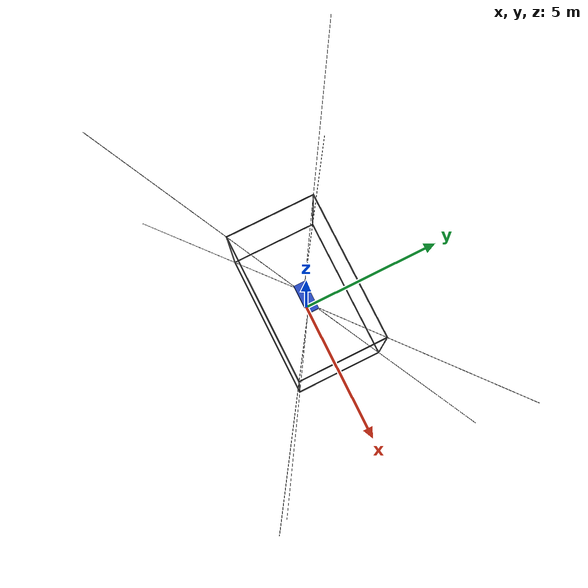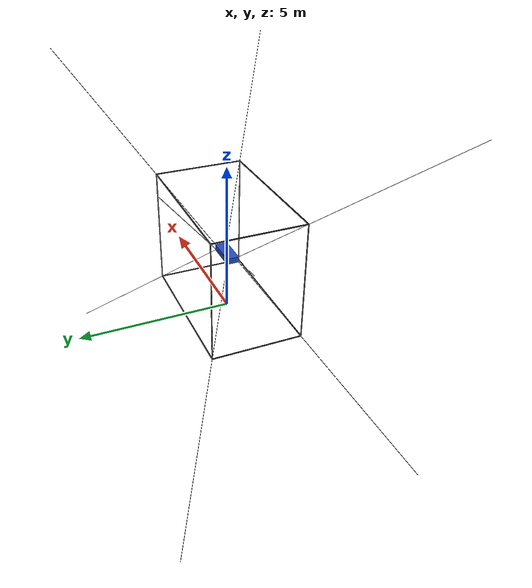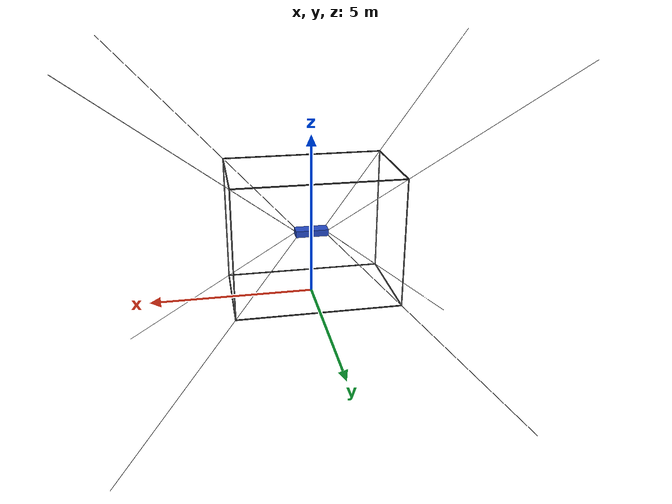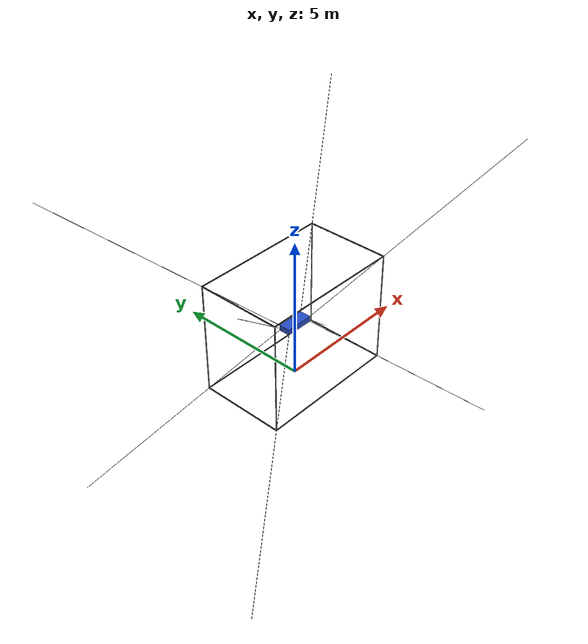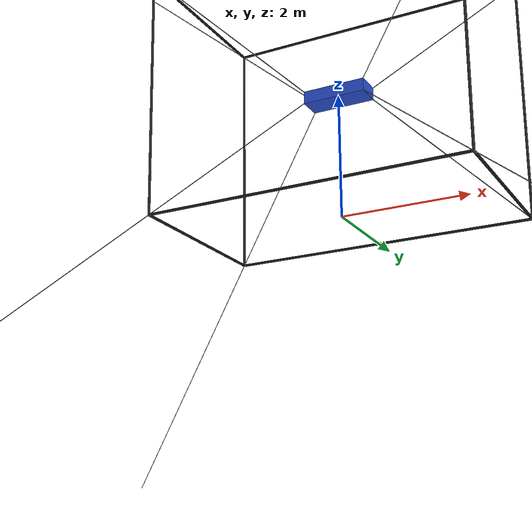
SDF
<?xml version="1.0"?>
<sdf version="1.4">
  <model name="cube">
    <!--Definition of the robot frame-->
    <link name="frame">
      <pose>0 0 0 0 0 0</pose>
      <inertial>
        <inertia>
          <ixx>50000.0</ixx>
          <ixy>0</ixy>
          <ixz>0</ixz>
          <iyy>50000.0</iyy>
          <iyz>0</iyz>
          <izz>50000.0</izz>
        </inertia>
        <mass>100000</mass>
      </inertial>
      <visual name="visual1">
        <geometry>
          <cylinder>
            <radius>0.02</radius>
            <length>4.0</length>
          </cylinder>
        </geometry>
        <pose>-2.500000 -1.500000 2.000000 0.000000 0.000000 0.000000</pose>
        <material>
          <script>
            <uri>file://media/materials/scripts/kitchen.material</uri>
            <name>Gazebo/Black</name>
          </script>
        </material>
      </visual>
      <collision name="collision1">
        <geometry>
          <cylinder>
            <radius>0.02</radius>
          </cylinder>
        </geometry>
        <pose>-2.500000 -1.500000 2.000000 0.000000 0.000000 0.000000</pose>
      </collision>
      <visual name="visual2">
        <geometry>
          <cylinder>
            <radius>0.02</radius>
            <length>3.0</length>
          </cylinder>
        </geometry>
        <pose>-2.500000 0.000000 0.000000 1.570796 0.000000 0.000000</pose>
        <material>
          <script>
            <uri>file://media/materials/scripts/kitchen.material</uri>
            <name>Gazebo/Black</name>
          </script>
        </material>
      </visual>
      <collision name="collision2">
        <geometry>
          <cylinder>
            <radius>0.02</radius>
          </cylinder>
        </geometry>
        <pose>-2.500000 0.000000 0.000000 1.570796 0.000000 0.000000</pose>
      </collision>
      <visual name="visual3">
        <geometry>
          <cylinder>
            <radius>0.02</radius>
            <length>5.0</length>
          </cylinder>
        </geometry>
        <pose>0.000000 -1.500000 0.000000 0.000000 1.570796 0.000000</pose>
        <material>
          <script>
            <uri>file://media/materials/scripts/kitchen.material</uri>
            <name>Gazebo/Black</name>
          </script>
        </material>
      </visual>
      <collision name="collision3">
        <geometry>
          <cylinder>
            <radius>0.02</radius>
          </cylinder>
        </geometry>
        <pose>0.000000 -1.500000 0.000000 0.000000 1.570796 0.000000</pose>
      </collision>
      <visual name="visual4">
        <geometry>
          <cylinder>
            <radius>0.02</radius>
            <length>3.0</length>
          </cylinder>
        </geometry>
        <pose>-2.500000 0.000000 4.000000 1.570796 0.000000 0.000000</pose>
        <material>
          <script>
            <uri>file://media/materials/scripts/kitchen.material</uri>
            <name>Gazebo/Black</name>
          </script>
        </material>
      </visual>
      <collision name="collision4">
        <geometry>
          <cylinder>
            <radius>0.02</radius>
          </cylinder>
        </geometry>
        <pose>-2.500000 0.000000 4.000000 1.570796 0.000000 0.000000</pose>
      </collision>
      <visual name="visual5">
        <geometry>
          <cylinder>
            <radius>0.02</radius>
            <length>5.0</length>
          </cylinder>
        </geometry>
        <pose>0.000000 -1.500000 4.000000 0.000000 1.570796 0.000000</pose>
        <material>
          <script>
            <uri>file://media/materials/scripts/kitchen.material</uri>
            <name>Gazebo/Black</name>
          </script>
        </material>
      </visual>
      <collision name="collision5">
        <geometry>
          <cylinder>
            <radius>0.02</radius>
          </cylinder>
        </geometry>
        <pose>0.000000 -1.500000 4.000000 0.000000 1.570796 0.000000</pose>
      </collision>
      <visual name="visual6">
        <geometry>
          <cylinder>
            <radius>0.02</radius>
            <length>4.0</length>
          </cylinder>
        </geometry>
        <pose>-2.500000 1.500000 2.000000 0.000000 0.000000 0.000000</pose>
        <material>
          <script>
            <uri>file://media/materials/scripts/kitchen.material</uri>
            <name>Gazebo/Black</name>
          </script>
        </material>
      </visual>
      <collision name="collision6">
        <geometry>
          <cylinder>
            <radius>0.02</radius>
          </cylinder>
        </geometry>
        <pose>-2.500000 1.500000 2.000000 0.000000 0.000000 0.000000</pose>
      </collision>
      <visual name="visual7">
        <geometry>
          <cylinder>
            <radius>0.02</radius>
            <length>5.0</length>
          </cylinder>
        </geometry>
        <pose>0.000000 1.500000 0.000000 0.000000 1.570796 0.000000</pose>
        <material>
          <script>
            <uri>file://media/materials/scripts/kitchen.material</uri>
            <name>Gazebo/Black</name>
          </script>
        </material>
      </visual>
      <collision name="collision7">
        <geometry>
          <cylinder>
            <radius>0.02</radius>
          </cylinder>
        </geometry>
        <pose>0.000000 1.500000 0.000000 0.000000 1.570796 0.000000</pose>
      </collision>
      <visual name="visual8">
        <geometry>
          <cylinder>
            <radius>0.02</radius>
            <length>5.0</length>
          </cylinder>
        </geometry>
        <pose>0.000000 1.500000 4.000000 0.000000 1.570796 0.000000</pose>
        <material>
          <script>
            <uri>file://media/materials/scripts/kitchen.material</uri>
            <name>Gazebo/Black</name>
          </script>
        </material>
      </visual>
      <collision name="collision8">
        <geometry>
          <cylinder>
            <radius>0.02</radius>
          </cylinder>
        </geometry>
        <pose>0.000000 1.500000 4.000000 0.000000 1.570796 0.000000</pose>
      </collision>
      <visual name="visual9">
        <geometry>
          <cylinder>
            <radius>0.02</radius>
            <length>4.0</length>
          </cylinder>
        </geometry>
        <pose>2.500000 -1.500000 2.000000 0.000000 0.000000 0.000000</pose>
        <material>
          <script>
            <uri>file://media/materials/scripts/kitchen.material</uri>
            <name>Gazebo/Black</name>
          </script>
        </material>
      </visual>
      <collision name="collision9">
        <geometry>
          <cylinder>
            <radius>0.02</radius>
          </cylinder>
        </geometry>
        <pose>2.500000 -1.500000 2.000000 0.000000 0.000000 0.000000</pose>
      </collision>
      <visual name="visual10">
        <geometry>
          <cylinder>
            <radius>0.02</radius>
            <length>3.0</length>
          </cylinder>
        </geometry>
        <pose>2.500000 0.000000 0.000000 1.570796 0.000000 0.000000</pose>
        <material>
          <script>
            <uri>file://media/materials/scripts/kitchen.material</uri>
            <name>Gazebo/Black</name>
          </script>
        </material>
      </visual>
      <collision name="collision10">
        <geometry>
          <cylinder>
            <radius>0.02</radius>
          </cylinder>
        </geometry>
        <pose>2.500000 0.000000 0.000000 1.570796 0.000000 0.000000</pose>
      </collision>
      <visual name="visual11">
        <geometry>
          <cylinder>
            <radius>0.02</radius>
            <length>3.0</length>
          </cylinder>
        </geometry>
        <pose>2.500000 0.000000 4.000000 1.570796 0.000000 0.000000</pose>
        <material>
          <script>
            <uri>file://media/materials/scripts/kitchen.material</uri>
            <name>Gazebo/Black</name>
          </script>
        </material>
      </visual>
      <collision name="collision11">
        <geometry>
          <cylinder>
            <radius>0.02</radius>
          </cylinder>
        </geometry>
        <pose>2.500000 0.000000 4.000000 1.570796 0.000000 0.000000</pose>
      </collision>
      <visual name="visual12">
        <geometry>
          <cylinder>
            <radius>0.02</radius>
            <length>4.0</length>
          </cylinder>
        </geometry>
        <pose>2.500000 1.500000 2.000000 0.000000 0.000000 0.000000</pose>
        <material>
          <script>
            <uri>file://media/materials/scripts/kitchen.material</uri>
            <name>Gazebo/Black</name>
          </script>
        </material>
      </visual>
      <collision name="collision12">
        <geometry>
          <cylinder>
            <radius>0.02</radius>
          </cylinder>
        </geometry>
        <pose>2.500000 1.500000 2.000000 0.000000 0.000000 0.000000</pose>
      </collision>
    </link>
    <!--Definition of the robot cables-->
    <!--Definition of the robot platform-->
    <link name="platform">
      <pose>0.000000 0.000000 2.000000 0.000000 0.000000 0.000000</pose>
      <visual name="visualplatform">
        <geometry>
          <box>
            <size>1 0.4 0.2</size>
          </box>
        </geometry>
        <material>
          <script>
            <uri>file://media/materials/scripts/kitchen.material</uri>
            <name>Gazebo/Blue</name>
          </script>
        </material>
      </visual>
      <collision name="collisionplatform">
        <geometry>
          <box>
            <size>1 0.4 0.2</size>
          </box>
        </geometry>
      </collision>
      <inertial>
        <inertia>
          <ixx>5.0</ixx>
          <ixy>0</ixy>
          <ixz>0</ixz>
          <iyy>5.0</iyy>
          <iyz>0</iyz>
          <izz>5.0</izz>
        </inertia>
        <mass>10</mass>
      </inertial>
    </link>
    <link name="cable0">
      <pose>-3.339809 -2.045876 -0.797819 -0.600050 0.715276 -0.230202</pose>
      <visual name="visual">
        <geometry>
          <cylinder>
            <radius>0.005</radius>
            <length>8.66025403784</length>
          </cylinder>
        </geometry>
        <material>
          <script>
            <uri>file://media/materials/scripts/kitchen.material</uri>
            <name>Gazebo/Black</name>
          </script>
        </material>
      </visual>
      <inertial>
        <inertia>
          <ixx>0.0</ixx>
          <ixy>0</ixy>
          <ixz>0</ixz>
          <iyy>0.0</iyy>
          <iyz>0</iyz>
          <izz>0.0</izz>
        </inertia>
        <mass>0.0</mass>
      </inertial>
    </link>
    <link name="virt_X0">
      <inertial>
        <inertia>
          <ixx>0.005</ixx>
          <ixy>0</ixy>
          <ixz>0</ixz>
          <iyy>0.005</iyy>
          <iyz>0</iyz>
          <izz>0.005</izz>
        </inertia>
        <mass>0.01</mass>
      </inertial>
      <pose>-2.500000 -1.500000 0.000000 -0.600050 0.715276 -0.230202</pose>
    </link>
    <joint name="rev_X0" type="revolute">
      <pose>0 0 0 -0.600050 0.715276 -0.230202</pose>
      <parent>frame</parent>
      <child>virt_X0</child>
      <axis>
        <xyz>0.734998 -0.172251 -0.655826</xyz>
        <limit>
          <effort>100</effort>
          <velocity>10</velocity>
        </limit>
        <dynamics>
          <damping>0.01</damping>
        </dynamics>
      </axis>
    </joint>
    <link name="virt_Y0">
      <inertial>
        <inertia>
          <ixx>0.005</ixx>
          <ixy>0</ixy>
          <ixz>0</ixz>
          <iyy>0.005</iyy>
          <iyz>0</iyz>
          <izz>0.005</izz>
        </inertia>
        <mass>0.01</mass>
      </inertial>
      <pose>-2.500000 -1.500000 0.000000 -0.600050 0.715276 -0.230202</pose>
    </link>
    <joint name="rev_Y0" type="revolute">
      <pose>0 0 0 -0.600050 0.715276 -0.230202</pose>
      <parent>virt_Y0</parent>
      <child>virt_X0</child>
      <axis>
        <xyz>-0.172251 0.888037 -0.426287</xyz>
        <limit>
          <effort>100</effort>
          <velocity>10</velocity>
        </limit>
        <dynamics>
          <damping>0.01</damping>
        </dynamics>
      </axis>
    </joint>
    <joint name="linear0" type="prismatic">
      <pose>0 0 1.818240 -0.600050 0.715276 -0.230202</pose>
      <parent>virt_Y0</parent>
      <child>cable0</child>
      <axis>
        <xyz>-0.655826 -0.426287 -0.623035</xyz>
        <limit>
          <lower>-50</lower>
          <upper>50</upper>
          <effort>400</effort>
          <velocity>100</velocity>
        </limit>
        <dynamics>
          <damping>1</damping>
        </dynamics>
      </axis>
    </joint>
    <link name="virt_Xpf0">
      <inertial>
        <inertia>
          <ixx>0.005</ixx>
          <ixy>0</ixy>
          <ixz>0</ixz>
          <iyy>0.005</iyy>
          <iyz>0</iyz>
          <izz>0.005</izz>
        </inertia>
        <mass>0.01</mass>
      </inertial>
      <pose>-0.500000 -0.200000 1.900000 -0.600050 0.715276 -0.230202</pose>
    </link>
    <joint name="rev_Xpf0" type="revolute">
      <pose>0 0 0 -0.600050 0.715276 -0.230202</pose>
      <parent>platform</parent>
      <child>virt_Ypf0</child>
      <axis>
        <xyz>1 0 0</xyz>
        <limit>
          <effort>100</effort>
          <velocity>10</velocity>
        </limit>
        <dynamics>
          <damping>0.01</damping>
        </dynamics>
      </axis>
    </joint>
    <link name="virt_Ypf0">
      <inertial>
        <inertia>
          <ixx>0.005</ixx>
          <ixy>0</ixy>
          <ixz>0</ixz>
          <iyy>0.005</iyy>
          <iyz>0</iyz>
          <izz>0.005</izz>
        </inertia>
        <mass>0.01</mass>
      </inertial>
      <pose>-0.500000 -0.200000 1.900000 -0.600050 0.715276 -0.230202</pose>
    </link>
    <joint name="rev_Ypf0" type="revolute">
      <pose>0 0 0 -0.600050 0.715276 -0.230202</pose>
      <parent>virt_Xpf0</parent>
      <child>virt_Ypf0</child>
      <axis>
        <xyz>0 1 0</xyz>
        <limit>
          <effort>100</effort>
          <velocity>10</velocity>
        </limit>
        <dynamics>
          <damping>0.01</damping>
        </dynamics>
      </axis>
    </joint>
    <joint name="rev_Zpf0" type="revolute">
      <pose>0 0 0 -0.600050 0.715276 -0.230202</pose>
      <child>virt_Ypf0</child>
      <parent>cable0</parent>
      <axis>
        <xyz>0 0 1</xyz>
        <limit>
          <effort>100</effort>
          <velocity>10</velocity>
        </limit>
        <dynamics>
          <damping>0.01</damping>
        </dynamics>
      </axis>
    </joint>
    <plugin filename="libcdpr3.so" name="freefloating_gazebo_control"/>
    <link name="cable1">
      <pose>-3.339809 2.045876 -0.797819 0.600050 0.715276 0.230202</pose>
      <visual name="visual">
        <geometry>
          <cylinder>
            <radius>0.005</radius>
            <length>8.66025403784</length>
          </cylinder>
        </geometry>
        <material>
          <script>
            <uri>file://media/materials/scripts/kitchen.material</uri>
            <name>Gazebo/Black</name>
          </script>
        </material>
      </visual>
      <inertial>
        <inertia>
          <ixx>0.0</ixx>
          <ixy>0</ixy>
          <ixz>0</ixz>
          <iyy>0.0</iyy>
          <iyz>0</iyz>
          <izz>0.0</izz>
        </inertia>
        <mass>0.0</mass>
      </inertial>
    </link>
    <link name="virt_X1">
      <inertial>
        <inertia>
          <ixx>0.005</ixx>
          <ixy>0</ixy>
          <ixz>0</ixz>
          <iyy>0.005</iyy>
          <iyz>0</iyz>
          <izz>0.005</izz>
        </inertia>
        <mass>0.01</mass>
      </inertial>
      <pose>-2.500000 1.500000 0.000000 0.600050 0.715276 0.230202</pose>
    </link>
    <joint name="rev_X1" type="revolute">
      <pose>0 0 0 0.600050 0.715276 0.230202</pose>
      <parent>frame</parent>
      <child>virt_X1</child>
      <axis>
        <xyz>0.734998 0.172251 -0.655826</xyz>
        <limit>
          <effort>100</effort>
          <velocity>10</velocity>
        </limit>
        <dynamics>
          <damping>0.01</damping>
        </dynamics>
      </axis>
    </joint>
    <link name="virt_Y1">
      <inertial>
        <inertia>
          <ixx>0.005</ixx>
          <ixy>0</ixy>
          <ixz>0</ixz>
          <iyy>0.005</iyy>
          <iyz>0</iyz>
          <izz>0.005</izz>
        </inertia>
        <mass>0.01</mass>
      </inertial>
      <pose>-2.500000 1.500000 0.000000 0.600050 0.715276 0.230202</pose>
    </link>
    <joint name="rev_Y1" type="revolute">
      <pose>0 0 0 0.600050 0.715276 0.230202</pose>
      <parent>virt_Y1</parent>
      <child>virt_X1</child>
      <axis>
        <xyz>0.172251 0.888037 0.426287</xyz>
        <limit>
          <effort>100</effort>
          <velocity>10</velocity>
        </limit>
        <dynamics>
          <damping>0.01</damping>
        </dynamics>
      </axis>
    </joint>
    <joint name="linear1" type="prismatic">
      <pose>0 0 1.818240 0.600050 0.715276 0.230202</pose>
      <parent>virt_Y1</parent>
      <child>cable1</child>
      <axis>
        <xyz>-0.655826 0.426287 -0.623035</xyz>
        <limit>
          <lower>-50</lower>
          <upper>50</upper>
          <effort>400</effort>
          <velocity>100</velocity>
        </limit>
        <dynamics>
          <damping>1</damping>
        </dynamics>
      </axis>
    </joint>
    <link name="virt_Xpf1">
      <inertial>
        <inertia>
          <ixx>0.005</ixx>
          <ixy>0</ixy>
          <ixz>0</ixz>
          <iyy>0.005</iyy>
          <iyz>0</iyz>
          <izz>0.005</izz>
        </inertia>
        <mass>0.01</mass>
      </inertial>
      <pose>-0.500000 0.200000 1.900000 0.600050 0.715276 0.230202</pose>
    </link>
    <joint name="rev_Xpf1" type="revolute">
      <pose>0 0 0 0.600050 0.715276 0.230202</pose>
      <parent>platform</parent>
      <child>virt_Ypf1</child>
      <axis>
        <xyz>1 0 0</xyz>
        <limit>
          <effort>100</effort>
          <velocity>10</velocity>
        </limit>
        <dynamics>
          <damping>0.01</damping>
        </dynamics>
      </axis>
    </joint>
    <link name="virt_Ypf1">
      <inertial>
        <inertia>
          <ixx>0.005</ixx>
          <ixy>0</ixy>
          <ixz>0</ixz>
          <iyy>0.005</iyy>
          <iyz>0</iyz>
          <izz>0.005</izz>
        </inertia>
        <mass>0.01</mass>
      </inertial>
      <pose>-0.500000 0.200000 1.900000 0.600050 0.715276 0.230202</pose>
    </link>
    <joint name="rev_Ypf1" type="revolute">
      <pose>0 0 0 0.600050 0.715276 0.230202</pose>
      <parent>virt_Xpf1</parent>
      <child>virt_Ypf1</child>
      <axis>
        <xyz>0 1 0</xyz>
        <limit>
          <effort>100</effort>
          <velocity>10</velocity>
        </limit>
        <dynamics>
          <damping>0.01</damping>
        </dynamics>
      </axis>
    </joint>
    <joint name="rev_Zpf1" type="revolute">
      <pose>0 0 0 0.600050 0.715276 0.230202</pose>
      <child>virt_Ypf1</child>
      <parent>cable1</parent>
      <axis>
        <xyz>0 0 1</xyz>
        <limit>
          <effort>100</effort>
          <velocity>10</velocity>
        </limit>
        <dynamics>
          <damping>0.01</damping>
        </dynamics>
      </axis>
    </joint>
    <plugin filename="libcdpr3.so" name="freefloating_gazebo_control"/>
    <link name="cable2">
      <pose>3.339809 2.045876 -0.797819 0.600050 -0.715276 -0.230202</pose>
      <visual name="visual">
        <geometry>
          <cylinder>
            <radius>0.005</radius>
            <length>8.66025403784</length>
          </cylinder>
        </geometry>
        <material>
          <script>
            <uri>file://media/materials/scripts/kitchen.material</uri>
            <name>Gazebo/Black</name>
          </script>
        </material>
      </visual>
      <inertial>
        <inertia>
          <ixx>0.0</ixx>
          <ixy>0</ixy>
          <ixz>0</ixz>
          <iyy>0.0</iyy>
          <iyz>0</iyz>
          <izz>0.0</izz>
        </inertia>
        <mass>0.0</mass>
      </inertial>
    </link>
    <link name="virt_X2">
      <inertial>
        <inertia>
          <ixx>0.005</ixx>
          <ixy>0</ixy>
          <ixz>0</ixz>
          <iyy>0.005</iyy>
          <iyz>0</iyz>
          <izz>0.005</izz>
        </inertia>
        <mass>0.01</mass>
      </inertial>
      <pose>2.500000 1.500000 0.000000 0.600050 -0.715276 -0.230202</pose>
    </link>
    <joint name="rev_X2" type="revolute">
      <pose>0 0 0 0.600050 -0.715276 -0.230202</pose>
      <parent>frame</parent>
      <child>virt_X2</child>
      <axis>
        <xyz>0.734998 -0.172251 0.655826</xyz>
        <limit>
          <effort>100</effort>
          <velocity>10</velocity>
        </limit>
        <dynamics>
          <damping>0.01</damping>
        </dynamics>
      </axis>
    </joint>
    <link name="virt_Y2">
      <inertial>
        <inertia>
          <ixx>0.005</ixx>
          <ixy>0</ixy>
          <ixz>0</ixz>
          <iyy>0.005</iyy>
          <iyz>0</iyz>
          <izz>0.005</izz>
        </inertia>
        <mass>0.01</mass>
      </inertial>
      <pose>2.500000 1.500000 0.000000 0.600050 -0.715276 -0.230202</pose>
    </link>
    <joint name="rev_Y2" type="revolute">
      <pose>0 0 0 0.600050 -0.715276 -0.230202</pose>
      <parent>virt_Y2</parent>
      <child>virt_X2</child>
      <axis>
        <xyz>-0.172251 0.888037 0.426287</xyz>
        <limit>
          <effort>100</effort>
          <velocity>10</velocity>
        </limit>
        <dynamics>
          <damping>0.01</damping>
        </dynamics>
      </axis>
    </joint>
    <joint name="linear2" type="prismatic">
      <pose>0 0 1.818240 0.600050 -0.715276 -0.230202</pose>
      <parent>virt_Y2</parent>
      <child>cable2</child>
      <axis>
        <xyz>0.655826 0.426287 -0.623035</xyz>
        <limit>
          <lower>-50</lower>
          <upper>50</upper>
          <effort>400</effort>
          <velocity>100</velocity>
        </limit>
        <dynamics>
          <damping>1</damping>
        </dynamics>
      </axis>
    </joint>
    <link name="virt_Xpf2">
      <inertial>
        <inertia>
          <ixx>0.005</ixx>
          <ixy>0</ixy>
          <ixz>0</ixz>
          <iyy>0.005</iyy>
          <iyz>0</iyz>
          <izz>0.005</izz>
        </inertia>
        <mass>0.01</mass>
      </inertial>
      <pose>0.500000 0.200000 1.900000 0.600050 -0.715276 -0.230202</pose>
    </link>
    <joint name="rev_Xpf2" type="revolute">
      <pose>0 0 0 0.600050 -0.715276 -0.230202</pose>
      <parent>platform</parent>
      <child>virt_Ypf2</child>
      <axis>
        <xyz>1 0 0</xyz>
        <limit>
          <effort>100</effort>
          <velocity>10</velocity>
        </limit>
        <dynamics>
          <damping>0.01</damping>
        </dynamics>
      </axis>
    </joint>
    <link name="virt_Ypf2">
      <inertial>
        <inertia>
          <ixx>0.005</ixx>
          <ixy>0</ixy>
          <ixz>0</ixz>
          <iyy>0.005</iyy>
          <iyz>0</iyz>
          <izz>0.005</izz>
        </inertia>
        <mass>0.01</mass>
      </inertial>
      <pose>0.500000 0.200000 1.900000 0.600050 -0.715276 -0.230202</pose>
    </link>
    <joint name="rev_Ypf2" type="revolute">
      <pose>0 0 0 0.600050 -0.715276 -0.230202</pose>
      <parent>virt_Xpf2</parent>
      <child>virt_Ypf2</child>
      <axis>
        <xyz>0 1 0</xyz>
        <limit>
          <effort>100</effort>
          <velocity>10</velocity>
        </limit>
        <dynamics>
          <damping>0.01</damping>
        </dynamics>
      </axis>
    </joint>
    <joint name="rev_Zpf2" type="revolute">
      <pose>0 0 0 0.600050 -0.715276 -0.230202</pose>
      <child>virt_Ypf2</child>
      <parent>cable2</parent>
      <axis>
        <xyz>0 0 1</xyz>
        <limit>
          <effort>100</effort>
          <velocity>10</velocity>
        </limit>
        <dynamics>
          <damping>0.01</damping>
        </dynamics>
      </axis>
    </joint>
    <plugin filename="libcdpr3.so" name="freefloating_gazebo_control"/>
    <link name="cable3">
      <pose>3.339809 -2.045876 -0.797819 -0.600050 -0.715276 0.230202</pose>
      <visual name="visual">
        <geometry>
          <cylinder>
            <radius>0.005</radius>
            <length>8.66025403784</length>
          </cylinder>
        </geometry>
        <material>
          <script>
            <uri>file://media/materials/scripts/kitchen.material</uri>
            <name>Gazebo/Black</name>
          </script>
        </material>
      </visual>
      <inertial>
        <inertia>
          <ixx>0.0</ixx>
          <ixy>0</ixy>
          <ixz>0</ixz>
          <iyy>0.0</iyy>
          <iyz>0</iyz>
          <izz>0.0</izz>
        </inertia>
        <mass>0.0</mass>
      </inertial>
    </link>
    <link name="virt_X3">
      <inertial>
        <inertia>
          <ixx>0.005</ixx>
          <ixy>0</ixy>
          <ixz>0</ixz>
          <iyy>0.005</iyy>
          <iyz>0</iyz>
          <izz>0.005</izz>
        </inertia>
        <mass>0.01</mass>
      </inertial>
      <pose>2.500000 -1.500000 0.000000 -0.600050 -0.715276 0.230202</pose>
    </link>
    <joint name="rev_X3" type="revolute">
      <pose>0 0 0 -0.600050 -0.715276 0.230202</pose>
      <parent>frame</parent>
      <child>virt_X3</child>
      <axis>
        <xyz>0.734998 0.172251 0.655826</xyz>
        <limit>
          <effort>100</effort>
          <velocity>10</velocity>
        </limit>
        <dynamics>
          <damping>0.01</damping>
        </dynamics>
      </axis>
    </joint>
    <link name="virt_Y3">
      <inertial>
        <inertia>
          <ixx>0.005</ixx>
          <ixy>0</ixy>
          <ixz>0</ixz>
          <iyy>0.005</iyy>
          <iyz>0</iyz>
          <izz>0.005</izz>
        </inertia>
        <mass>0.01</mass>
      </inertial>
      <pose>2.500000 -1.500000 0.000000 -0.600050 -0.715276 0.230202</pose>
    </link>
    <joint name="rev_Y3" type="revolute">
      <pose>0 0 0 -0.600050 -0.715276 0.230202</pose>
      <parent>virt_Y3</parent>
      <child>virt_X3</child>
      <axis>
        <xyz>0.172251 0.888037 -0.426287</xyz>
        <limit>
          <effort>100</effort>
          <velocity>10</velocity>
        </limit>
        <dynamics>
          <damping>0.01</damping>
        </dynamics>
      </axis>
    </joint>
    <joint name="linear3" type="prismatic">
      <pose>0 0 1.818240 -0.600050 -0.715276 0.230202</pose>
      <parent>virt_Y3</parent>
      <child>cable3</child>
      <axis>
        <xyz>0.655826 -0.426287 -0.623035</xyz>
        <limit>
          <lower>-50</lower>
          <upper>50</upper>
          <effort>400</effort>
          <velocity>100</velocity>
        </limit>
        <dynamics>
          <damping>1</damping>
        </dynamics>
      </axis>
    </joint>
    <link name="virt_Xpf3">
      <inertial>
        <inertia>
          <ixx>0.005</ixx>
          <ixy>0</ixy>
          <ixz>0</ixz>
          <iyy>0.005</iyy>
          <iyz>0</iyz>
          <izz>0.005</izz>
        </inertia>
        <mass>0.01</mass>
      </inertial>
      <pose>0.500000 -0.200000 1.900000 -0.600050 -0.715276 0.230202</pose>
    </link>
    <joint name="rev_Xpf3" type="revolute">
      <pose>0 0 0 -0.600050 -0.715276 0.230202</pose>
      <parent>platform</parent>
      <child>virt_Ypf3</child>
      <axis>
        <xyz>1 0 0</xyz>
        <limit>
          <effort>100</effort>
          <velocity>10</velocity>
        </limit>
        <dynamics>
          <damping>0.01</damping>
        </dynamics>
      </axis>
    </joint>
    <link name="virt_Ypf3">
      <inertial>
        <inertia>
          <ixx>0.005</ixx>
          <ixy>0</ixy>
          <ixz>0</ixz>
          <iyy>0.005</iyy>
          <iyz>0</iyz>
          <izz>0.005</izz>
        </inertia>
        <mass>0.01</mass>
      </inertial>
      <pose>0.500000 -0.200000 1.900000 -0.600050 -0.715276 0.230202</pose>
    </link>
    <joint name="rev_Ypf3" type="revolute">
      <pose>0 0 0 -0.600050 -0.715276 0.230202</pose>
      <parent>virt_Xpf3</parent>
      <child>virt_Ypf3</child>
      <axis>
        <xyz>0 1 0</xyz>
        <limit>
          <effort>100</effort>
          <velocity>10</velocity>
        </limit>
        <dynamics>
          <damping>0.01</damping>
        </dynamics>
      </axis>
    </joint>
    <joint name="rev_Zpf3" type="revolute">
      <pose>0 0 0 -0.600050 -0.715276 0.230202</pose>
      <child>virt_Ypf3</child>
      <parent>cable3</parent>
      <axis>
        <xyz>0 0 1</xyz>
        <limit>
          <effort>100</effort>
          <velocity>10</velocity>
        </limit>
        <dynamics>
          <damping>0.01</damping>
        </dynamics>
      </axis>
    </joint>
    <plugin filename="libcdpr3.so" name="freefloating_gazebo_control"/>
    <link name="cable4">
      <pose>-3.339809 -2.045876 4.797819 -2.541542 0.715276 -1.758640</pose>
      <visual name="visual">
        <geometry>
          <cylinder>
            <radius>0.005</radius>
            <length>8.66025403784</length>
          </cylinder>
        </geometry>
        <material>
          <script>
            <uri>file://media/materials/scripts/kitchen.material</uri>
            <name>Gazebo/Black</name>
          </script>
        </material>
      </visual>
      <inertial>
        <inertia>
          <ixx>0.0</ixx>
          <ixy>0</ixy>
          <ixz>0</ixz>
          <iyy>0.0</iyy>
          <iyz>0</iyz>
          <izz>0.0</izz>
        </inertia>
        <mass>0.0</mass>
      </inertial>
    </link>
    <link name="virt_X4">
      <inertial>
        <inertia>
          <ixx>0.005</ixx>
          <ixy>0</ixy>
          <ixz>0</ixz>
          <iyy>0.005</iyy>
          <iyz>0</iyz>
          <izz>0.005</izz>
        </inertia>
        <mass>0.01</mass>
      </inertial>
      <pose>-2.500000 -1.500000 4.000000 -2.541542 0.715276 -1.758640</pose>
    </link>
    <joint name="rev_X4" type="revolute">
      <pose>0 0 0 -2.541542 0.715276 -1.758640</pose>
      <parent>frame</parent>
      <child>virt_X4</child>
      <axis>
        <xyz>-0.140973 -0.741633 -0.655826</xyz>
        <limit>
          <effort>100</effort>
          <velocity>10</velocity>
        </limit>
        <dynamics>
          <damping>0.01</damping>
        </dynamics>
      </axis>
    </joint>
    <link name="virt_Y4">
      <inertial>
        <inertia>
          <ixx>0.005</ixx>
          <ixy>0</ixy>
          <ixz>0</ixz>
          <iyy>0.005</iyy>
          <iyz>0</iyz>
          <izz>0.005</izz>
        </inertia>
        <mass>0.01</mass>
      </inertial>
      <pose>-2.500000 -1.500000 4.000000 -2.541542 0.715276 -1.758640</pose>
    </link>
    <joint name="rev_Y4" type="revolute">
      <pose>0 0 0 -2.541542 0.715276 -1.758640</pose>
      <parent>virt_Y4</parent>
      <child>virt_X4</child>
      <axis>
        <xyz>-0.741633 0.517939 -0.426287</xyz>
        <limit>
          <effort>100</effort>
          <velocity>10</velocity>
        </limit>
        <dynamics>
          <damping>0.01</damping>
        </dynamics>
      </axis>
    </joint>
    <joint name="linear4" type="prismatic">
      <pose>0 0 1.818240 -2.541542 0.715276 -1.758640</pose>
      <parent>virt_Y4</parent>
      <child>cable4</child>
      <axis>
        <xyz>-0.655826 -0.426287 0.623035</xyz>
        <limit>
          <lower>-50</lower>
          <upper>50</upper>
          <effort>400</effort>
          <velocity>100</velocity>
        </limit>
        <dynamics>
          <damping>1</damping>
        </dynamics>
      </axis>
    </joint>
    <link name="virt_Xpf4">
      <inertial>
        <inertia>
          <ixx>0.005</ixx>
          <ixy>0</ixy>
          <ixz>0</ixz>
          <iyy>0.005</iyy>
          <iyz>0</iyz>
          <izz>0.005</izz>
        </inertia>
        <mass>0.01</mass>
      </inertial>
      <pose>-0.500000 -0.200000 2.100000 -2.541542 0.715276 -1.758640</pose>
    </link>
    <joint name="rev_Xpf4" type="revolute">
      <pose>0 0 0 -2.541542 0.715276 -1.758640</pose>
      <parent>platform</parent>
      <child>virt_Ypf4</child>
      <axis>
        <xyz>1 0 0</xyz>
        <limit>
          <effort>100</effort>
          <velocity>10</velocity>
        </limit>
        <dynamics>
          <damping>0.01</damping>
        </dynamics>
      </axis>
    </joint>
    <link name="virt_Ypf4">
      <inertial>
        <inertia>
          <ixx>0.005</ixx>
          <ixy>0</ixy>
          <ixz>0</ixz>
          <iyy>0.005</iyy>
          <iyz>0</iyz>
          <izz>0.005</izz>
        </inertia>
        <mass>0.01</mass>
      </inertial>
      <pose>-0.500000 -0.200000 2.100000 -2.541542 0.715276 -1.758640</pose>
    </link>
    <joint name="rev_Ypf4" type="revolute">
      <pose>0 0 0 -2.541542 0.715276 -1.758640</pose>
      <parent>virt_Xpf4</parent>
      <child>virt_Ypf4</child>
      <axis>
        <xyz>0 1 0</xyz>
        <limit>
          <effort>100</effort>
          <velocity>10</velocity>
        </limit>
        <dynamics>
          <damping>0.01</damping>
        </dynamics>
      </axis>
    </joint>
    <joint name="rev_Zpf4" type="revolute">
      <pose>0 0 0 -2.541542 0.715276 -1.758640</pose>
      <child>virt_Ypf4</child>
      <parent>cable4</parent>
      <axis>
        <xyz>0 0 1</xyz>
        <limit>
          <effort>100</effort>
          <velocity>10</velocity>
        </limit>
        <dynamics>
          <damping>0.01</damping>
        </dynamics>
      </axis>
    </joint>
    <plugin filename="libcdpr3.so" name="freefloating_gazebo_control"/>
    <link name="cable5">
      <pose>-3.339809 2.045876 4.797819 2.541542 0.715276 1.758640</pose>
      <visual name="visual">
        <geometry>
          <cylinder>
            <radius>0.005</radius>
            <length>8.66025403784</length>
          </cylinder>
        </geometry>
        <material>
          <script>
            <uri>file://media/materials/scripts/kitchen.material</uri>
            <name>Gazebo/Black</name>
          </script>
        </material>
      </visual>
      <inertial>
        <inertia>
          <ixx>0.0</ixx>
          <ixy>0</ixy>
          <ixz>0</ixz>
          <iyy>0.0</iyy>
          <iyz>0</iyz>
          <izz>0.0</izz>
        </inertia>
        <mass>0.0</mass>
      </inertial>
    </link>
    <link name="virt_X5">
      <inertial>
        <inertia>
          <ixx>0.005</ixx>
          <ixy>0</ixy>
          <ixz>0</ixz>
          <iyy>0.005</iyy>
          <iyz>0</iyz>
          <izz>0.005</izz>
        </inertia>
        <mass>0.01</mass>
      </inertial>
      <pose>-2.500000 1.500000 4.000000 2.541542 0.715276 1.758640</pose>
    </link>
    <joint name="rev_X5" type="revolute">
      <pose>0 0 0 2.541542 0.715276 1.758640</pose>
      <parent>frame</parent>
      <child>virt_X5</child>
      <axis>
        <xyz>-0.140973 0.741633 -0.655826</xyz>
        <limit>
          <effort>100</effort>
          <velocity>10</velocity>
        </limit>
        <dynamics>
          <damping>0.01</damping>
        </dynamics>
      </axis>
    </joint>
    <link name="virt_Y5">
      <inertial>
        <inertia>
          <ixx>0.005</ixx>
          <ixy>0</ixy>
          <ixz>0</ixz>
          <iyy>0.005</iyy>
          <iyz>0</iyz>
          <izz>0.005</izz>
        </inertia>
        <mass>0.01</mass>
      </inertial>
      <pose>-2.500000 1.500000 4.000000 2.541542 0.715276 1.758640</pose>
    </link>
    <joint name="rev_Y5" type="revolute">
      <pose>0 0 0 2.541542 0.715276 1.758640</pose>
      <parent>virt_Y5</parent>
      <child>virt_X5</child>
      <axis>
        <xyz>0.741633 0.517939 0.426287</xyz>
        <limit>
          <effort>100</effort>
          <velocity>10</velocity>
        </limit>
        <dynamics>
          <damping>0.01</damping>
        </dynamics>
      </axis>
    </joint>
    <joint name="linear5" type="prismatic">
      <pose>0 0 1.818240 2.541542 0.715276 1.758640</pose>
      <parent>virt_Y5</parent>
      <child>cable5</child>
      <axis>
        <xyz>-0.655826 0.426287 0.623035</xyz>
        <limit>
          <lower>-50</lower>
          <upper>50</upper>
          <effort>400</effort>
          <velocity>100</velocity>
        </limit>
        <dynamics>
          <damping>1</damping>
        </dynamics>
      </axis>
    </joint>
    <link name="virt_Xpf5">
      <inertial>
        <inertia>
          <ixx>0.005</ixx>
          <ixy>0</ixy>
          <ixz>0</ixz>
          <iyy>0.005</iyy>
          <iyz>0</iyz>
          <izz>0.005</izz>
        </inertia>
        <mass>0.01</mass>
      </inertial>
      <pose>-0.500000 0.200000 2.100000 2.541542 0.715276 1.758640</pose>
    </link>
    <joint name="rev_Xpf5" type="revolute">
      <pose>0 0 0 2.541542 0.715276 1.758640</pose>
      <parent>platform</parent>
      <child>virt_Ypf5</child>
      <axis>
        <xyz>1 0 0</xyz>
        <limit>
          <effort>100</effort>
          <velocity>10</velocity>
        </limit>
        <dynamics>
          <damping>0.01</damping>
        </dynamics>
      </axis>
    </joint>
    <link name="virt_Ypf5">
      <inertial>
        <inertia>
          <ixx>0.005</ixx>
          <ixy>0</ixy>
          <ixz>0</ixz>
          <iyy>0.005</iyy>
          <iyz>0</iyz>
          <izz>0.005</izz>
        </inertia>
        <mass>0.01</mass>
      </inertial>
      <pose>-0.500000 0.200000 2.100000 2.541542 0.715276 1.758640</pose>
    </link>
    <joint name="rev_Ypf5" type="revolute">
      <pose>0 0 0 2.541542 0.715276 1.758640</pose>
      <parent>virt_Xpf5</parent>
      <child>virt_Ypf5</child>
      <axis>
        <xyz>0 1 0</xyz>
        <limit>
          <effort>100</effort>
          <velocity>10</velocity>
        </limit>
        <dynamics>
          <damping>0.01</damping>
        </dynamics>
      </axis>
    </joint>
    <joint name="rev_Zpf5" type="revolute">
      <pose>0 0 0 2.541542 0.715276 1.758640</pose>
      <child>virt_Ypf5</child>
      <parent>cable5</parent>
      <axis>
        <xyz>0 0 1</xyz>
        <limit>
          <effort>100</effort>
          <velocity>10</velocity>
        </limit>
        <dynamics>
          <damping>0.01</damping>
        </dynamics>
      </axis>
    </joint>
    <plugin filename="libcdpr3.so" name="freefloating_gazebo_control"/>
    <link name="cable6">
      <pose>3.339809 2.045876 4.797819 2.541542 -0.715276 -1.758640</pose>
      <visual name="visual">
        <geometry>
          <cylinder>
            <radius>0.005</radius>
            <length>8.66025403784</length>
          </cylinder>
        </geometry>
        <material>
          <script>
            <uri>file://media/materials/scripts/kitchen.material</uri>
            <name>Gazebo/Black</name>
          </script>
        </material>
      </visual>
      <inertial>
        <inertia>
          <ixx>0.0</ixx>
          <ixy>0</ixy>
          <ixz>0</ixz>
          <iyy>0.0</iyy>
          <iyz>0</iyz>
          <izz>0.0</izz>
        </inertia>
        <mass>0.0</mass>
      </inertial>
    </link>
    <link name="virt_X6">
      <inertial>
        <inertia>
          <ixx>0.005</ixx>
          <ixy>0</ixy>
          <ixz>0</ixz>
          <iyy>0.005</iyy>
          <iyz>0</iyz>
          <izz>0.005</izz>
        </inertia>
        <mass>0.01</mass>
      </inertial>
      <pose>2.500000 1.500000 4.000000 2.541542 -0.715276 -1.758640</pose>
    </link>
    <joint name="rev_X6" type="revolute">
      <pose>0 0 0 2.541542 -0.715276 -1.758640</pose>
      <parent>frame</parent>
      <child>virt_X6</child>
      <axis>
        <xyz>-0.140973 -0.741633 0.655826</xyz>
        <limit>
          <effort>100</effort>
          <velocity>10</velocity>
        </limit>
        <dynamics>
          <damping>0.01</damping>
        </dynamics>
      </axis>
    </joint>
    <link name="virt_Y6">
      <inertial>
        <inertia>
          <ixx>0.005</ixx>
          <ixy>0</ixy>
          <ixz>0</ixz>
          <iyy>0.005</iyy>
          <iyz>0</iyz>
          <izz>0.005</izz>
        </inertia>
        <mass>0.01</mass>
      </inertial>
      <pose>2.500000 1.500000 4.000000 2.541542 -0.715276 -1.758640</pose>
    </link>
    <joint name="rev_Y6" type="revolute">
      <pose>0 0 0 2.541542 -0.715276 -1.758640</pose>
      <parent>virt_Y6</parent>
      <child>virt_X6</child>
      <axis>
        <xyz>-0.741633 0.517939 0.426287</xyz>
        <limit>
          <effort>100</effort>
          <velocity>10</velocity>
        </limit>
        <dynamics>
          <damping>0.01</damping>
        </dynamics>
      </axis>
    </joint>
    <joint name="linear6" type="prismatic">
      <pose>0 0 1.818240 2.541542 -0.715276 -1.758640</pose>
      <parent>virt_Y6</parent>
      <child>cable6</child>
      <axis>
        <xyz>0.655826 0.426287 0.623035</xyz>
        <limit>
          <lower>-50</lower>
          <upper>50</upper>
          <effort>400</effort>
          <velocity>100</velocity>
        </limit>
        <dynamics>
          <damping>1</damping>
        </dynamics>
      </axis>
    </joint>
    <link name="virt_Xpf6">
      <inertial>
        <inertia>
          <ixx>0.005</ixx>
          <ixy>0</ixy>
          <ixz>0</ixz>
          <iyy>0.005</iyy>
          <iyz>0</iyz>
          <izz>0.005</izz>
        </inertia>
        <mass>0.01</mass>
      </inertial>
      <pose>0.500000 0.200000 2.100000 2.541542 -0.715276 -1.758640</pose>
    </link>
    <joint name="rev_Xpf6" type="revolute">
      <pose>0 0 0 2.541542 -0.715276 -1.758640</pose>
      <parent>platform</parent>
      <child>virt_Ypf6</child>
      <axis>
        <xyz>1 0 0</xyz>
        <limit>
          <effort>100</effort>
          <velocity>10</velocity>
        </limit>
        <dynamics>
          <damping>0.01</damping>
        </dynamics>
      </axis>
    </joint>
    <link name="virt_Ypf6">
      <inertial>
        <inertia>
          <ixx>0.005</ixx>
          <ixy>0</ixy>
          <ixz>0</ixz>
          <iyy>0.005</iyy>
          <iyz>0</iyz>
          <izz>0.005</izz>
        </inertia>
        <mass>0.01</mass>
      </inertial>
      <pose>0.500000 0.200000 2.100000 2.541542 -0.715276 -1.758640</pose>
    </link>
    <joint name="rev_Ypf6" type="revolute">
      <pose>0 0 0 2.541542 -0.715276 -1.758640</pose>
      <parent>virt_Xpf6</parent>
      <child>virt_Ypf6</child>
      <axis>
        <xyz>0 1 0</xyz>
        <limit>
          <effort>100</effort>
          <velocity>10</velocity>
        </limit>
        <dynamics>
          <damping>0.01</damping>
        </dynamics>
      </axis>
    </joint>
    <joint name="rev_Zpf6" type="revolute">
      <pose>0 0 0 2.541542 -0.715276 -1.758640</pose>
      <child>virt_Ypf6</child>
      <parent>cable6</parent>
      <axis>
        <xyz>0 0 1</xyz>
        <limit>
          <effort>100</effort>
          <velocity>10</velocity>
        </limit>
        <dynamics>
          <damping>0.01</damping>
        </dynamics>
      </axis>
    </joint>
    <plugin filename="libcdpr3.so" name="freefloating_gazebo_control"/>
    <link name="cable7">
      <pose>3.339809 -2.045876 4.797819 -2.541542 -0.715276 1.758640</pose>
      <visual name="visual">
        <geometry>
          <cylinder>
            <radius>0.005</radius>
            <length>8.66025403784</length>
          </cylinder>
        </geometry>
        <material>
          <script>
            <uri>file://media/materials/scripts/kitchen.material</uri>
            <name>Gazebo/Black</name>
          </script>
        </material>
      </visual>
      <inertial>
        <inertia>
          <ixx>0.0</ixx>
          <ixy>0</ixy>
          <ixz>0</ixz>
          <iyy>0.0</iyy>
          <iyz>0</iyz>
          <izz>0.0</izz>
        </inertia>
        <mass>0.0</mass>
      </inertial>
    </link>
    <link name="virt_X7">
      <inertial>
        <inertia>
          <ixx>0.005</ixx>
          <ixy>0</ixy>
          <ixz>0</ixz>
          <iyy>0.005</iyy>
          <iyz>0</iyz>
          <izz>0.005</izz>
        </inertia>
        <mass>0.01</mass>
      </inertial>
      <pose>2.500000 -1.500000 4.000000 -2.541542 -0.715276 1.758640</pose>
    </link>
    <joint name="rev_X7" type="revolute">
      <pose>0 0 0 -2.541542 -0.715276 1.758640</pose>
      <parent>frame</parent>
      <child>virt_X7</child>
      <axis>
        <xyz>-0.140973 0.741633 0.655826</xyz>
        <limit>
          <effort>100</effort>
          <velocity>10</velocity>
        </limit>
        <dynamics>
          <damping>0.01</damping>
        </dynamics>
      </axis>
    </joint>
    <link name="virt_Y7">
      <inertial>
        <inertia>
          <ixx>0.005</ixx>
          <ixy>0</ixy>
          <ixz>0</ixz>
          <iyy>0.005</iyy>
          <iyz>0</iyz>
          <izz>0.005</izz>
        </inertia>
        <mass>0.01</mass>
      </inertial>
      <pose>2.500000 -1.500000 4.000000 -2.541542 -0.715276 1.758640</pose>
    </link>
    <joint name="rev_Y7" type="revolute">
      <pose>0 0 0 -2.541542 -0.715276 1.758640</pose>
      <parent>virt_Y7</parent>
      <child>virt_X7</child>
      <axis>
        <xyz>0.741633 0.517939 -0.426287</xyz>
        <limit>
          <effort>100</effort>
          <velocity>10</velocity>
        </limit>
        <dynamics>
          <damping>0.01</damping>
        </dynamics>
      </axis>
    </joint>
    <joint name="linear7" type="prismatic">
      <pose>0 0 1.818240 -2.541542 -0.715276 1.758640</pose>
      <parent>virt_Y7</parent>
      <child>cable7</child>
      <axis>
        <xyz>0.655826 -0.426287 0.623035</xyz>
        <limit>
          <lower>-50</lower>
          <upper>50</upper>
          <effort>400</effort>
          <velocity>100</velocity>
        </limit>
        <dynamics>
          <damping>1</damping>
        </dynamics>
      </axis>
    </joint>
    <link name="virt_Xpf7">
      <inertial>
        <inertia>
          <ixx>0.005</ixx>
          <ixy>0</ixy>
          <ixz>0</ixz>
          <iyy>0.005</iyy>
          <iyz>0</iyz>
          <izz>0.005</izz>
        </inertia>
        <mass>0.01</mass>
      </inertial>
      <pose>0.500000 -0.200000 2.100000 -2.541542 -0.715276 1.758640</pose>
    </link>
    <joint name="rev_Xpf7" type="revolute">
      <pose>0 0 0 -2.541542 -0.715276 1.758640</pose>
      <parent>platform</parent>
      <child>virt_Ypf7</child>
      <axis>
        <xyz>1 0 0</xyz>
        <limit>
          <effort>100</effort>
          <velocity>10</velocity>
        </limit>
        <dynamics>
          <damping>0.01</damping>
        </dynamics>
      </axis>
    </joint>
    <link name="virt_Ypf7">
      <inertial>
        <inertia>
          <ixx>0.005</ixx>
          <ixy>0</ixy>
          <ixz>0</ixz>
          <iyy>0.005</iyy>
          <iyz>0</iyz>
          <izz>0.005</izz>
        </inertia>
        <mass>0.01</mass>
      </inertial>
      <pose>0.500000 -0.200000 2.100000 -2.541542 -0.715276 1.758640</pose>
    </link>
    <joint name="rev_Ypf7" type="revolute">
      <pose>0 0 0 -2.541542 -0.715276 1.758640</pose>
      <parent>virt_Xpf7</parent>
      <child>virt_Ypf7</child>
      <axis>
        <xyz>0 1 0</xyz>
        <limit>
          <effort>100</effort>
          <velocity>10</velocity>
        </limit>
        <dynamics>
          <damping>0.01</damping>
        </dynamics>
      </axis>
    </joint>
    <joint name="rev_Zpf7" type="revolute">
      <pose>0 0 0 -2.541542 -0.715276 1.758640</pose>
      <child>virt_Ypf7</child>
      <parent>cable7</parent>
      <axis>
        <xyz>0 0 1</xyz>
        <limit>
          <effort>100</effort>
          <velocity>10</velocity>
        </limit>
        <dynamics>
          <damping>0.01</damping>
        </dynamics>
      </axis>
    </joint>
    <plugin filename="libcdpr3.so" name="freefloating_gazebo_control"/>
  </model>
</sdf>
